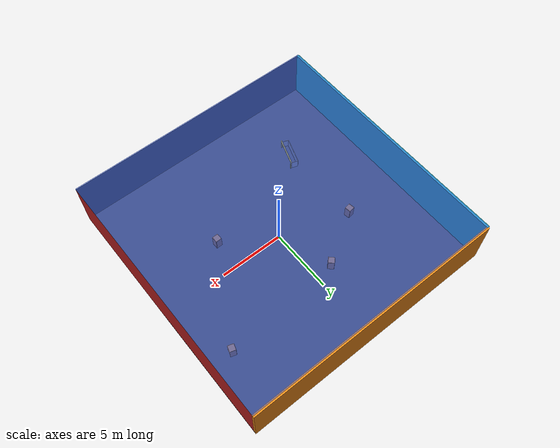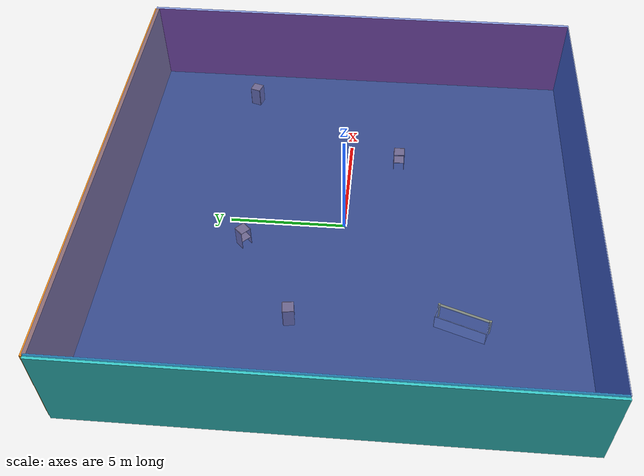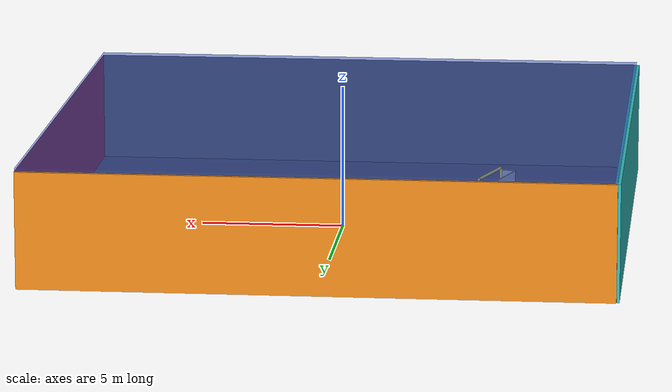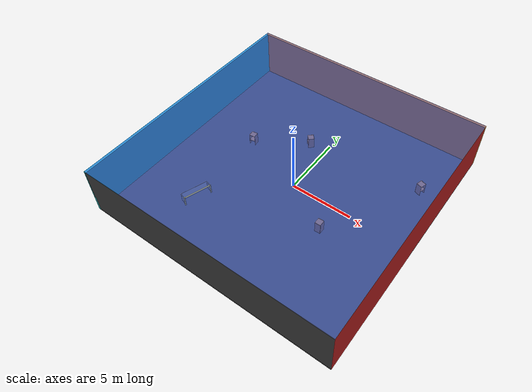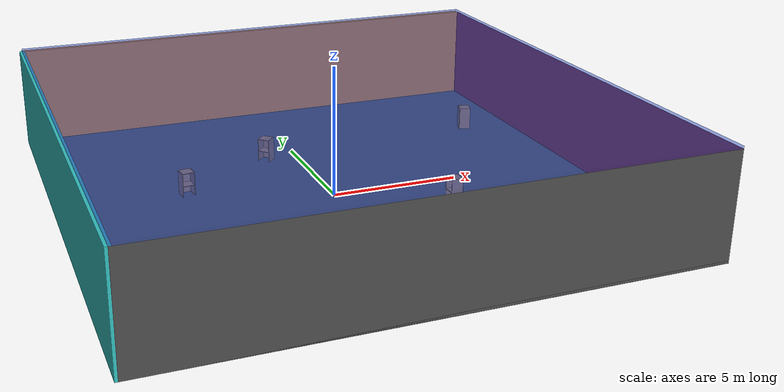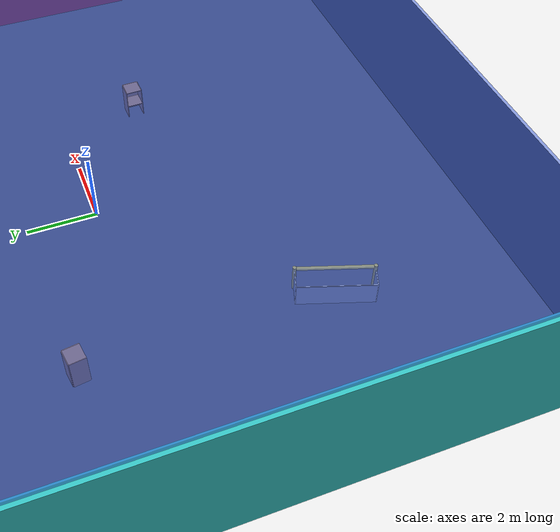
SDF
<sdf version="1.4">
 <world name="default">
  <physics type="ode">
   <max_step_size>0.001</max_step_size>
   <real_time_factor>1</real_time_factor>
   <real_time_update_rate>1000</real_time_update_rate>
   <gravity>0 0 -9.8</gravity>
  </physics>
  <scene><ambient>0.4 0.4 0.4 1</ambient><background>0.7 0.7 0.7 1</background><shadows>1</shadows></scene>
  <model name="Surrounding">
   <static>1</static>
   <link name="Ceiling">
    <collision name="Ceiling_Collision"><geometry><box><size>20 20 0.1</size></box></geometry></collision>
    <visual name="Ceiling_Visual">
     <geometry><box><size>20 20 0.1</size></box></geometry>
     <material>
      <script><uri>file://media/materials/scripts/gazebo.material</uri><name>Gazebo/BlueTransparent</name></script>
     </material>
    </visual>
    <pose>0 0 4.05 0 0 0</pose>
   </link>
   <link name="Wall_South">
    <collision name="Wall_South_Collision">
     <geometry><box><size>20 0 4</size></box></geometry>
     <pose>0 0 2 0 -0 0</pose>
    </collision>
    <visual name="Wall_South_Visual">
     <pose>0 0 2 0 -0 0</pose>
     <geometry><box><size>20 0 4</size></box></geometry>
     <material>
      <script><uri>file://media/materials/scripts/gazebo.material</uri><name>Gazebo/DarkGrey</name></script>
     </material>
    </visual>
    <velocity_decay><linear>0</linear><angular>0</angular></velocity_decay>
    <pose>0 -10 0 0 -0 0</pose>
   </link>
   <link name="Wall_East">
    <collision name="Wall_21_Collision">
     <geometry><box><size>20 0 4</size></box></geometry>
     <pose>0 0 2 0 -0 0</pose>
    </collision>
    <visual name="Wall_21_Visual">
     <pose>0 0 2 0 -0 0</pose>
     <geometry><box><size>20 0 4</size></box></geometry>
     <material>
      <script><uri>file://media/materials/scripts/gazebo.material</uri><name>Gazebo/Red</name></script>
     </material>
    </visual>
    <velocity_decay><linear>0</linear><angular>0</angular></velocity_decay>
    <pose>10 0 0 0 -0 1.5708</pose>
   </link>
   <link name="Wall_North">
    <collision name="Wall_22_Collision">
     <geometry><box><size>20 0.2 4</size></box></geometry>
     <pose>0 0 2 0 -0 0</pose>
    </collision>
    <visual name="Wall_22_Visual">
     <pose>0 0 2 0 -0 0</pose>
     <geometry><box><size>20 0.2 4</size></box></geometry>
     <material>
      <script><uri>file://media/materials/scripts/gazebo.material</uri><name>Gazebo/Orange</name></script>
     </material>
    </visual>
    <velocity_decay><linear>0</linear><angular>0</angular></velocity_decay>
    <pose>0 10 0 0 -0 0</pose>
   </link>
   <link name="Wall_West">
    <collision name="Wall_23_Collision">
     <geometry><box><size>20 0.2 4</size></box></geometry>
     <pose>0 0 2 0 -0 0</pose>
    </collision>
    <visual name="Wall_23_Visual">
     <pose>0 0 2 0 -0 0</pose>
     <geometry><box><size>20 0.2 4</size></box></geometry>
     <material>
      <script>
       <uri>file://media/materials/scripts/gazebo.material</uri>
       <name>Gazebo/TurquoiseGlowOutline</name>
      </script>
     </material>
    </visual>
    <velocity_decay><linear>0</linear><angular>0</angular></velocity_decay>
    <pose>-10 0 0 0 0 -1.5708</pose>
   </link>
   <link name="Ground_link">
    <collision name="collision">
     <pose>0 0 .05 0 -0 0</pose>
     <geometry><box><size>20 20 0.1</size></box></geometry>
    </collision>
    <visual name="visual">
     <pose>0 0 .05 0 -0 0</pose>
     <geometry><box><size>20 20 0.1</size></box></geometry>
     <material>
      <script><uri>file://media/materials/scripts/gazebo.material</uri><name>Gazebo/DarkGrey</name></script>
     </material>
    </visual>
   </link>
   <static>1</static>
  </model>
  <spherical_coordinates>
   <surface_model>EARTH_WGS84</surface_model>
   <latitude_deg>0</latitude_deg>
   <longitude_deg>0</longitude_deg>
   <elevation>0</elevation>
   <heading_deg>0</heading_deg>
  </spherical_coordinates>
  <light name="lightball_0" type="diffuse">
   <diffuse>0.8 0.8 0.8 1</diffuse>
   <specular>0.2 0.2 0.2 1</specular>
   <attenuation>
    <range>100</range>
    <constant>0.7</constant>
    <linear>0.01</linear>
    <quadratic>0.001</quadratic>
   </attenuation>
   <direction>-0.5 0.1 -0.9</direction>
   <pose>-9.54315760979 3.87001437221 0.950038074519 0 0 0</pose>
  </light>
  <light name="lightball_1" type="diffuse">
   <diffuse>0.8 0.8 0.8 1</diffuse>
   <specular>0.2 0.2 0.2 1</specular>
   <attenuation>
    <range>100</range>
    <constant>0.7</constant>
    <linear>0.01</linear>
    <quadratic>0.001</quadratic>
   </attenuation>
   <direction>-0.5 0.1 -0.9</direction>
   <pose>2.5433135424 1.75102119063 1.36061173574 0 0 0</pose>
  </light>
  <light name="lightball_2" type="diffuse">
   <diffuse>0.8 0.8 0.8 1</diffuse>
   <specular>0.2 0.2 0.2 1</specular>
   <attenuation>
    <range>100</range>
    <constant>0.7</constant>
    <linear>0.01</linear>
    <quadratic>0.001</quadratic>
   </attenuation>
   <direction>-0.5 0.1 -0.9</direction>
   <pose>6.34598083952 6.0599397409 2.79285168586 0 0 0</pose>
  </light>
  <light name="lightball_3" type="diffuse">
   <diffuse>0.8 0.8 0.8 1</diffuse>
   <specular>0.2 0.2 0.2 1</specular>
   <attenuation>
    <range>100</range>
    <constant>0.7</constant>
    <linear>0.01</linear>
    <quadratic>0.001</quadratic>
   </attenuation>
   <direction>-0.5 0.1 -0.9</direction>
   <pose>8.04565397848 -3.23280672285 3.52143868169 0 0 0</pose>
  </light>
  <light name="lightball_4" type="diffuse">
   <diffuse>0.8 0.8 0.8 1</diffuse>
   <specular>0.2 0.2 0.2 1</specular>
   <attenuation>
    <range>100</range>
    <constant>0.7</constant>
    <linear>0.01</linear>
    <quadratic>0.001</quadratic>
   </attenuation>
   <direction>-0.5 0.1 -0.9</direction>
   <pose>-6.70085135282 0.234386829383 1.05678741064 0 0 0</pose>
  </light>
  <light name="lightball_5" type="diffuse">
   <diffuse>0.8 0.8 0.8 1</diffuse>
   <specular>0.2 0.2 0.2 1</specular>
   <attenuation>
    <range>100</range>
    <constant>0.7</constant>
    <linear>0.01</linear>
    <quadratic>0.001</quadratic>
   </attenuation>
   <direction>-0.5 0.1 -0.9</direction>
   <pose>0.402092428586 -4.29325364595 1.18689446155 0 0 0</pose>
  </light>
  <light name="lightball_6" type="diffuse">
   <diffuse>0.8 0.8 0.8 1</diffuse>
   <specular>0.2 0.2 0.2 1</specular>
   <attenuation>
    <range>100</range>
    <constant>0.7</constant>
    <linear>0.01</linear>
    <quadratic>0.001</quadratic>
   </attenuation>
   <direction>-0.5 0.1 -0.9</direction>
   <pose>-1.62004960821 -3.00022914199 1.8081759717 0 0 0</pose>
  </light>
  <light name="lightball_7" type="diffuse">
   <diffuse>0.8 0.8 0.8 1</diffuse>
   <specular>0.2 0.2 0.2 1</specular>
   <attenuation>
    <range>100</range>
    <constant>0.7</constant>
    <linear>0.01</linear>
    <quadratic>0.001</quadratic>
   </attenuation>
   <direction>-0.5 0.1 -0.9</direction>
   <pose>-1.51328112989 3.44087116674 0.531118968051 0 0 0</pose>
  </light>
  <light name="lightball_8" type="diffuse">
   <diffuse>0.8 0.8 0.8 1</diffuse>
   <specular>0.2 0.2 0.2 1</specular>
   <attenuation>
    <range>100</range>
    <constant>0.7</constant>
    <linear>0.01</linear>
    <quadratic>0.001</quadratic>
   </attenuation>
   <direction>-0.5 0.1 -0.9</direction>
   <pose>-5.07249682917 -1.66268683739 2.97966691624 0 0 0</pose>
  </light>
  <light name="lightball_9" type="diffuse">
   <diffuse>0.8 0.8 0.8 1</diffuse>
   <specular>0.2 0.2 0.2 1</specular>
   <attenuation>
    <range>100</range>
    <constant>0.7</constant>
    <linear>0.01</linear>
    <quadratic>0.001</quadratic>
   </attenuation>
   <direction>-0.5 0.1 -0.9</direction>
   <pose>-5.27670989331 0.688438514336 2.67853655276 0 0 0</pose>
  </light>
  <light name="lightball_10" type="diffuse">
   <diffuse>0.8 0.8 0.8 1</diffuse>
   <specular>0.2 0.2 0.2 1</specular>
   <attenuation>
    <range>100</range>
    <constant>0.7</constant>
    <linear>0.01</linear>
    <quadratic>0.001</quadratic>
   </attenuation>
   <direction>-0.5 0.1 -0.9</direction>
   <pose>-6.76455805808 5.86088446167 2.99922144545 0 0 0</pose>
  </light>
  <light name="lightball_11" type="diffuse">
   <diffuse>0.8 0.8 0.8 1</diffuse>
   <specular>0.2 0.2 0.2 1</specular>
   <attenuation>
    <range>100</range>
    <constant>0.7</constant>
    <linear>0.01</linear>
    <quadratic>0.001</quadratic>
   </attenuation>
   <direction>-0.5 0.1 -0.9</direction>
   <pose>7.84200340107 -0.476701056069 1.90199715242 0 0 0</pose>
  </light>
  <light name="lightball_12" type="diffuse">
   <diffuse>0.8 0.8 0.8 1</diffuse>
   <specular>0.2 0.2 0.2 1</specular>
   <attenuation>
    <range>100</range>
    <constant>0.7</constant>
    <linear>0.01</linear>
    <quadratic>0.001</quadratic>
   </attenuation>
   <direction>-0.5 0.1 -0.9</direction>
   <pose>-7.2764549181 -4.51017702933 3.25807293225 0 0 0</pose>
  </light>
  <include>
   <uri>model://robocup_3Dsim_goal</uri>
   <pose>-4.86491603003 -5.11278398926 0 0 0 2.81212772391</pose>
  </include>
  <include><uri>model://cabinet</uri><pose>-5.20742268217 1.80638314865 0 0 0 1.70648621258</pose></include>
  <include><uri>model://cabinet</uri><pose>-1.34216178162 4.21670068025 0 0 0 0.78370664389</pose></include>
  <include><uri>model://cabinet</uri><pose>3.87118496905 -2.25395351682 0 0 0 0.0189402616928</pose></include>
  <include><uri>model://cabinet</uri><pose>7.9727257031 4.96112401426 0 0 0 2.84203998281</pose></include>
 </world>
</sdf>

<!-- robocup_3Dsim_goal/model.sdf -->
<sdf version="1.5">
  <model name="robocup_3d_goal">
    <static>true</static>
    <link name="left_post">
      <pose>0 1.05 0.45 0 0 0</pose>
      <collision name="collision">
        <geometry>
          <cylinder>
            <radius>0.05</radius>
            <length>0.9</length>
          </cylinder>
        </geometry>
      </collision>
      <visual name="visual">
        <geometry>
          <cylinder>
            <radius>0.05</radius>
            <length>0.9</length>
          </cylinder>
        </geometry>
        <material>
          <script>
            <uri>file://media/materials/scripts/gazebo.material</uri>
            <name>Gazebo/ZincYellow</name>
          </script>
        </material>
      </visual>
    </link>
    <link name="left_support_horiz_lower">
      <pose>0.30 1.05 0.01 0 0 0</pose>
      <collision name="collision">
        <geometry>
          <box>
            <size>0.50 0.02 0.02</size>
          </box>
        </geometry>
      </collision>
      <visual name="visual">
        <geometry>
          <box>
            <size>0.50 0.02 0.02</size>
          </box>
        </geometry>
        <material>
          <script>
            <uri>file://media/materials/scripts/gazebo.material</uri>
            <name>Gazebo/White</name>
          </script>
        </material>
      </visual>
    </link>
    <link name="left_support_horiz_upper">
      <pose>0.30 1.05 0.79 0 0 0</pose>
      <collision name="collision">
        <geometry>
          <box>
            <size>0.50 0.02 0.02</size>
          </box>
        </geometry>
      </collision>
      <visual name="visual">
        <geometry>
          <box>
            <size>0.50 0.02 0.02</size>
          </box>
        </geometry>
        <material>
          <script>
            <uri>file://media/materials/scripts/gazebo.material</uri>
            <name>Gazebo/White</name>
          </script>
        </material>
      </visual>
    </link>
    <link name="left_support_vertical">
      <pose>0.56 1.05 0.4 0 1.5708 0</pose>
      <collision name="collision">
        <geometry>
          <box>
            <size>0.80 0.02 0.02</size>
          </box>
        </geometry>
      </collision>
      <visual name="visual">
        <geometry>
          <box>
            <size>0.80 0.02 0.02</size>
          </box>
        </geometry>
        <material>
          <script>
            <uri>file://media/materials/scripts/gazebo.material</uri>
            <name>Gazebo/White</name>
          </script>
        </material>
      </visual>
    </link>
    <link name="right_support_horiz_lower">
      <pose>0.30 -1.05 0.01 0 0 0</pose>
      <collision name="collision">
        <geometry>
          <box>
            <size>0.50 0.02 0.02</size>
          </box>
        </geometry>
      </collision>
      <visual name="visual">
        <geometry>
          <box>
            <size>0.50 0.02 0.02</size>
          </box>
        </geometry>
        <material>
          <script>
            <uri>file://media/materials/scripts/gazebo.material</uri>
            <name>Gazebo/White</name>
          </script>
        </material>
      </visual>
    </link>
    <link name="right_support_horiz_upper">
      <pose>0.30 -1.05 0.79 0 0 0</pose>
      <collision name="collision">
        <geometry>
          <box>
            <size>0.50 0.02 0.02</size>
          </box>
        </geometry>
      </collision>
      <visual name="visual">
        <geometry>
          <box>
            <size>0.50 0.02 0.02</size>
          </box>
        </geometry>
        <material>
          <script>
            <uri>file://media/materials/scripts/gazebo.material</uri>
            <name>Gazebo/White</name>
          </script>
        </material>
      </visual>
    </link>
    <link name="right_support_vertical">
      <pose>0.56 -1.05 0.4 0 1.5708 0</pose>
      <collision name="collision">
        <geometry>
          <box>
            <size>0.80 0.02 0.02</size>
          </box>
        </geometry>
      </collision>
      <visual name="visual">
        <geometry>
          <box>
            <size>0.80 0.02 0.02</size>
          </box>
        </geometry>
        <material>
          <script>
            <uri>file://media/materials/scripts/gazebo.material</uri>
            <name>Gazebo/White</name>
          </script>
        </material>
      </visual>
    </link>
    <link name="center_support_horiz_lower">
      <pose>0.56 0 0.01 0 1.5708 0</pose>
      <collision name="collision">
        <geometry>
          <box>
            <size>0.02 2.08 0.02</size>
          </box>
        </geometry>
      </collision>
      <visual name="visual">
        <geometry>
          <box>
            <size>0.02 2.08 0.02</size>
          </box>
        </geometry>
        <material>
          <script>
            <uri>file://media/materials/scripts/gazebo.material</uri>
            <name>Gazebo/White</name>
          </script>
        </material>
      </visual>
    </link>
    <link name="center_support_horiz_upper">
      <pose>0.56 0 0.79 0 1.5708 0</pose>
      <collision name="collision">
        <geometry>
          <box>
            <size>0.02 2.08 0.02</size>
          </box>
        </geometry>
      </collision>
      <visual name="visual">
        <geometry>
          <box>
            <size>0.02 2.08 0.02</size>
          </box>
        </geometry>
        <material>
          <script>
            <uri>file://media/materials/scripts/gazebo.material</uri>
            <name>Gazebo/White</name>
          </script>
        </material>
      </visual>
    </link>
    <link name="right_post">
      <pose>0 -1.05 0.45 0 0 0</pose>
      <collision name="collision">
        <geometry>
          <cylinder>
            <radius>0.05</radius>
            <length>0.9</length>
          </cylinder>
        </geometry>
      </collision>
      <visual name="visual">
        <geometry>
          <cylinder>
            <radius>0.05</radius>
            <length>0.9</length>
          </cylinder>
        </geometry>
        <material>
          <script>
            <uri>file://media/materials/scripts/gazebo.material</uri>
            <name>Gazebo/ZincYellow</name>
          </script>
        </material>
      </visual>
    </link>
    <link name="crossbar">
      <pose>0 0 0.85 1.57 1.57 0</pose>
      <collision name="collision">
        <geometry>
          <cylinder>
            <radius>0.05</radius>
            <length>2.0</length>
          </cylinder>
        </geometry>
      </collision>
      <visual name="visual">
        <geometry>
          <cylinder>
            <radius>0.05</radius>
            <length>2.0</length>
          </cylinder>
        </geometry>
        <material>
          <script>
            <uri>file://media/materials/scripts/gazebo.material</uri>
            <name>Gazebo/ZincYellow</name>
          </script>
        </material>
      </visual>
    </link>
    <link name="center_net">
      <pose>0.56 0 0.40 0 0 0</pose>
      <collision name="collision">
        <geometry>
          <box>
            <size>0.01 2.1 0.80</size>
          </box>
        </geometry>
      </collision>
      <visual name="visual">
        <geometry>
          <box>
            <size>0.01 2.1 0.80</size>
          </box>
        </geometry>
        <material>
          <script>
            <uri>model://../model_source/models/robocup09_spl_field/materials/scripts/</uri>
            <uri>model://../model_source/models/robocup09_spl_field/materials/textures/</uri>
            <name>RoboCup/Net</name>
          </script>
        </material>
      </visual>
    </link>
    <link name="left_net">
      <pose>0.30 1.05 0.40 0 0 0</pose>
      <collision name="collision">
        <geometry>
          <box>
            <size>0.50 0.01 0.76</size>
          </box>
        </geometry>
      </collision>
      <visual name="visual">
        <geometry>
          <box>
            <size>0.50 0.01 0.76</size>
          </box>
        </geometry>
        <material>
          <script>
            <uri>model://../model_source/models/robocup09_spl_field/materials/scripts/</uri>
            <uri>model://../model_source/models/robocup09_spl_field/materials/textures/</uri>
            <name>RoboCup/Net</name>
          </script>
        </material>
      </visual>
    </link>
    <link name="right_net">
      <pose>0.30 -1.05 0.40 0 0 0</pose>
      <collision name="collision">
        <geometry>
          <box>
            <size>0.50 0.01 0.76</size>
          </box>
        </geometry>
      </collision>
      <visual name="visual">
        <geometry>
          <box>
            <size>0.50 0.01 0.76</size>
          </box>
        </geometry>
        <material>
          <script>
            <uri>model://../model_source/models/robocup09_spl_field/materials/scripts/</uri>
            <uri>model://../model_source/models/robocup09_spl_field/materials/textures/</uri>
            <name>RoboCup/Net</name>
          </script>
        </material>
      </visual>
    </link>
  </model>
</sdf>

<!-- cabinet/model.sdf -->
<sdf version="1.5">
  <model name="cabinet">
    <static>true</static>
    <link name="cabinet_bottom_plate">
      <inertial>
        <pose>0 0 -1 0 0 0</pose>
        <inertia>
          <ixx>2.050000</ixx>
          <ixy>0</ixy>
          <ixz>0</ixz>
          <iyy>2.050000</iyy>
          <iyz>0</iyz>
          <izz>2.050000</izz>
        </inertia>
        <mass>25.000000</mass>
      </inertial>
      <collision name="cabinet_bottom_plate_geom">
        <pose>0 0 0.010000 0 0 0</pose>
        <geometry>
          <box>
            <size>0.450000 0.450000 0.020000</size>
          </box>
        </geometry>
      </collision>
      <visual name="cabinet_bottom_plate_geom_visual">
        <pose>0 0 0.010000 0 0 0</pose>
        <geometry>
          <box>
            <size>0.450000 0.450000 0.020000</size>
          </box>
        </geometry>
        <material>
          <script>
            <uri>model://media/materials/scripts/gazebo.material</uri>
            <name>Gazebo/Wood</name>
          </script>
        </material>
      </visual>
      <collision name="cabinet_bottom_plate_geom_cabinet_back_plate">
        <pose>0.235000 0 0.510000 0 0 0</pose>
        <geometry>
          <box>
            <size>0.020000 0.450000 1.020000</size>
          </box>
        </geometry>
      </collision>
      <visual name="cabinet_bottom_plate_geom_cabinet_back_plate_visual">
        <pose>0.235000 0 0.510000 0 0 0</pose>
        <geometry>
          <box>
            <size>0.020000 0.450000 1.020000</size>
          </box>
        </geometry>
        <material>
          <script>
            <uri>model://media/materials/scripts/gazebo.material</uri>
            <name>Gazebo/Wood</name>
          </script>
        </material>
      </visual>
      <collision name="cabinet_bottom_plate_geom_cabinet_left_plate">
        <pose>0 0.235000 0.510000 0 0 0</pose>
        <geometry>
          <box>
            <size>0.450000 0.020000 1.020000</size>
          </box>
        </geometry>
      </collision>
      <visual name="cabinet_bottom_plate_geom_cabinet_left_plate_visual">
        <pose>0 0.235000 0.510000 0 0 0</pose>
        <geometry>
          <box>
            <size>0.450000 0.020000 1.020000</size>
          </box>
        </geometry>
        <material>
          <script>
            <uri>model://media/materials/scripts/gazebo.material</uri>
            <name>Gazebo/Wood</name>
          </script>
        </material>
      </visual>
      <collision name="cabinet_bottom_plate_geom_cabinet_middle_plate">
        <pose>0 0 0.510000 0 0 0</pose>
        <geometry>
          <box>
            <size>0.450000 0.450000 0.020000</size>
          </box>
        </geometry>
      </collision>
      <visual name="cabinet_bottom_plate_geom_cabinet_middle_plate_visual">
        <pose>0 0 0.510000 0 0 0</pose>
        <geometry>
          <box>
            <size>0.450000 0.450000 0.020000</size>
          </box>
        </geometry>
        <material>
          <script>
            <uri>model://media/materials/scripts/gazebo.material</uri>
            <name>Gazebo/Wood</name>
          </script>
        </material>
      </visual>
      <collision name="cabinet_bottom_plate_geom_cabinet_right_plate">
        <pose>0 -0.235000 0.510000 0 0 0</pose>
        <geometry>
          <box>
            <size>0.450000 0.020000 1.020000</size>
          </box>
        </geometry>
      </collision>
      <visual name="cabinet_bottom_plate_geom_cabinet_right_plate_visual">
        <pose>0 -0.235000 0.510000 0 0 0</pose>
        <geometry>
          <box>
            <size>0.450000 0.020000 1.020000</size>
          </box>
        </geometry>
        <material>
          <script>
            <uri>model://media/materials/scripts/gazebo.material</uri>
            <name>Gazebo/Wood</name>
          </script>
        </material>
      </visual>
      <collision name="cabinet_bottom_plate_geom_cabinet_top_plate">
        <pose>0 0 1.010000 0 0 0</pose>
        <geometry>
          <box>
            <size>0.450000 0.450000 0.020000</size>
          </box>
        </geometry>
      </collision>
      <visual name="cabinet_bottom_plate_geom_cabinet_top_plate_visual">
        <pose>0 0 1.010000 0 0 0</pose>
        <geometry>
          <box>
            <size>0.450000 0.450000 0.020000</size>
          </box>
        </geometry>
        <material>
          <script>
            <uri>model://media/materials/scripts/gazebo.material</uri>
            <name>Gazebo/Wood</name>
          </script>
        </material>
      </visual>
    </link>
  </model>
</sdf>
